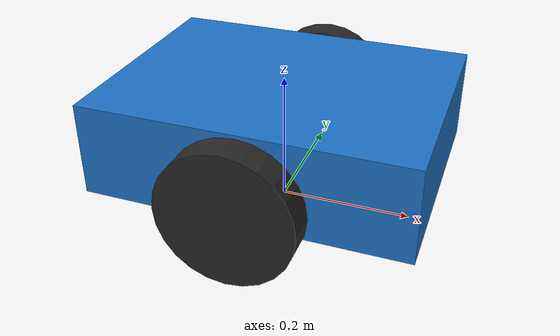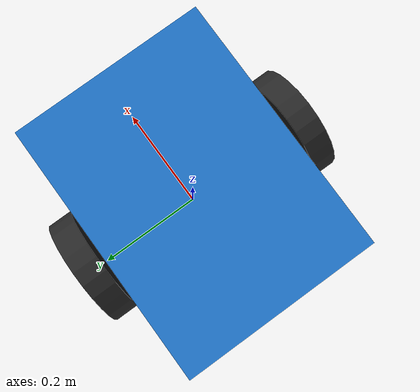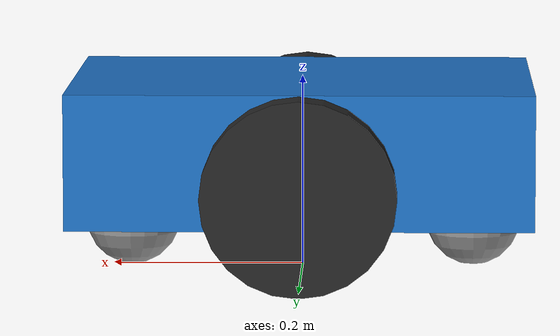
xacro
<?xml version="1.0"?>
<robot xmlns:xacro="http://www.ros.org/wiki/xacro">

  <!-- Inertia macro helpers -->
  <xacro:macro name="inertial_sphere" params="mass radius *origin">
    <inertial>
      <xacro:insert_block name="origin"/>
      <mass value="${mass}" />
      <inertia ixx="${(2/5) * mass * (radius*radius)}" ixy="0.0" ixz="0.0"
               iyy="${(2/5) * mass * (radius*radius)}" iyz="0.0"
               izz="${(2/5) * mass * (radius*radius)}" />
    </inertial>
  </xacro:macro>

  <xacro:macro name="inertial_box" params="mass x y z *origin">
    <inertial>
      <xacro:insert_block name="origin"/>
      <mass value="${mass}" />
      <inertia ixx="${(1/12) * mass * (y*y + z*z)}" ixy="0.0" ixz="0.0"
               iyy="${(1/12) * mass * (x*x + z*z)}" iyz="0.0"
               izz="${(1/12) * mass * (x*x + y*y)}" />
    </inertial>
  </xacro:macro>

  <xacro:macro name="inertial_cylinder" params="mass length radius *origin">
    <inertial>
      <xacro:insert_block name="origin"/>
      <mass value="${mass}" />
      <inertia ixx="${(1/12) * mass * (3*radius*radius + length*length)}" ixy="0.0" ixz="0.0"
               iyy="${(1/12) * mass * (3*radius*radius + length*length)}" iyz="0.0"
               izz="${(1/2) * mass * (radius*radius)}" />
    </inertial>
  </xacro:macro>

  <!-- Materials -->
  <material name="chassis_blue">
    <color rgba="0.12 0.45 0.78 1.0"/>
  </material>

  <material name="wheel_dark">
    <color rgba="0.15 0.15 0.15 1.0"/>
  </material>

  <material name="sensor_orange">
    <color rgba="0.95 0.45 0.1 1.0"/>
  </material>

  <material name="caster_metal">
    <color rgba="0.6 0.6 0.6 1.0"/>
  </material>

  <!-- BASE FOOTPRINT -->
  <link name="base_footprint"/>

  <!-- BASE LINK -->
  <joint name="base_footprint_joint" type="fixed">
    <parent link="base_footprint"/>
    <child link="base_link"/>
    <origin xyz="0 0 0.08" rpy="0 0 0"/>
  </joint>

  <link name="base_link">
    <visual>
      <origin xyz="0 0 0.05" rpy="0 0 0"/>
      <geometry>
        <box size="0.48 0.36 0.14"/>
      </geometry>
      <material name="chassis_blue"/>
    </visual>
    <collision>
      <origin xyz="0 0 0.05" rpy="0 0 0"/>
      <geometry>
        <box size="0.48 0.36 0.14"/>
      </geometry>
    </collision>
    <xacro:inertial_box mass="12.0" x="0.48" y="0.36" z="0.14">
      <origin xyz="0 0 0.05" rpy="0 0 0"/>
    </xacro:inertial_box>
  </link>

  <gazebo reference="base_link">
    <visual>
      <material>
        <ambient>0.12 0.45 0.78 1.0</ambient>
        <diffuse>0.12 0.45 0.78 1.0</diffuse>
        <specular>0.5 0.5 0.5 1.0</specular>
      </material>
    </visual>
  </gazebo>

  <!-- LEFT WHEEL -->
  <joint name="left_wheel_joint" type="continuous">
    <parent link="base_link"/>
    <child link="left_wheel"/>
    <origin xyz="0 0.21 0.02" rpy="-${pi/2} 0 0"/>
    <axis xyz="0 0 1"/>
  </joint>

  <link name="left_wheel">
    <visual>
      <geometry>
        <cylinder radius="0.10" length="0.045"/>
      </geometry>
      <material name="wheel_dark"/>
    </visual>
    <collision>
      <geometry>
        <cylinder radius="0.10" length="0.045"/>
      </geometry>
    </collision>
    <xacro:inertial_cylinder mass="1.5" length="0.045" radius="0.10">
      <origin xyz="0 0 0" rpy="0 0 0"/>
    </xacro:inertial_cylinder>
  </link>

  <gazebo reference="left_wheel">
    <visual>
      <material>
        <ambient>0.15 0.15 0.15 1.0</ambient>
        <diffuse>0.15 0.15 0.15 1.0</diffuse>
        <specular>0.3 0.3 0.3 1.0</specular>
      </material>
    </visual>
    <mu1>1.2</mu1>
    <mu2>1.2</mu2>
    <kp>1000000.0</kp>
    <kd>100.0</kd>
  </gazebo>

  <!-- RIGHT WHEEL -->
  <joint name="right_wheel_joint" type="continuous">
    <parent link="base_link"/>
    <child link="right_wheel"/>
    <origin xyz="0 -0.21 0.02" rpy="${pi/2} 0 0"/>
    <axis xyz="0 0 -1"/>
  </joint>

  <link name="right_wheel">
    <visual>
      <geometry>
        <cylinder radius="0.10" length="0.045"/>
      </geometry>
      <material name="wheel_dark"/>
    </visual>
    <collision>
      <geometry>
        <cylinder radius="0.10" length="0.045"/>
      </geometry>
    </collision>
    <xacro:inertial_cylinder mass="1.5" length="0.045" radius="0.10">
      <origin xyz="0 0 0" rpy="0 0 0"/>
    </xacro:inertial_cylinder>
  </link>

  <gazebo reference="right_wheel">
    <visual>
      <material>
        <ambient>0.15 0.15 0.15 1.0</ambient>
        <diffuse>0.15 0.15 0.15 1.0</diffuse>
        <specular>0.3 0.3 0.3 1.0</specular>
      </material>
    </visual>
    <mu1>1.2</mu1>
    <mu2>1.2</mu2>
    <kp>1000000.0</kp>
    <kd>100.0</kd>
  </gazebo>

  <!-- FRONT CASTER WHEEL -->
  <joint name="front_caster_joint" type="fixed">
    <parent link="base_link"/>
    <child link="front_caster"/>
    <origin xyz="0.18 0 -0.03"/>
  </joint>

  <link name="front_caster">
    <visual>
      <geometry>
        <sphere radius="0.05"/>
      </geometry>
      <material name="caster_metal"/>
    </visual>
    <collision>
      <geometry>
        <sphere radius="0.05"/>
      </geometry>
    </collision>
    <xacro:inertial_sphere mass="0.5" radius="0.05">
      <origin xyz="0 0 0" rpy="0 0 0"/>
    </xacro:inertial_sphere>
  </link>

  <gazebo reference="front_caster">
    <visual>
      <material>
        <ambient>0.6 0.6 0.6 1.0</ambient>
        <diffuse>0.6 0.6 0.6 1.0</diffuse>
      </material>
    </visual>
    <mu1>0.001</mu1>
    <mu2>0.001</mu2>
  </gazebo>

  <!-- REAR CASTER WHEEL -->
  <joint name="rear_caster_joint" type="fixed">
    <parent link="base_link"/>
    <child link="rear_caster"/>
    <origin xyz="-0.18 0 -0.03"/>
  </joint>

  <link name="rear_caster">
    <visual>
      <geometry>
        <sphere radius="0.05"/>
      </geometry>
      <material name="caster_metal"/>
    </visual>
    <collision>
      <geometry>
        <sphere radius="0.05"/>
      </geometry>
    </collision>
    <xacro:inertial_sphere mass="0.5" radius="0.05">
      <origin xyz="0 0 0" rpy="0 0 0"/>
    </xacro:inertial_sphere>
  </link>

  <gazebo reference="rear_caster">
    <visual>
      <material>
        <ambient>0.6 0.6 0.6 1.0</ambient>
        <diffuse>0.6 0.6 0.6 1.0</diffuse>
      </material>
    </visual>
    <mu1>0.001</mu1>
    <mu2>0.001</mu2>
  </gazebo>

</robot>
